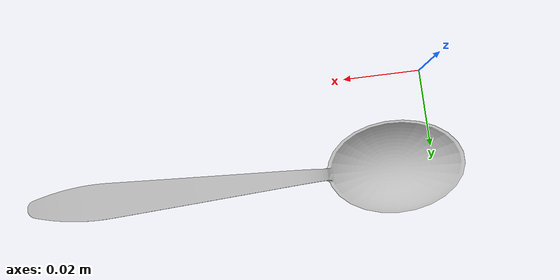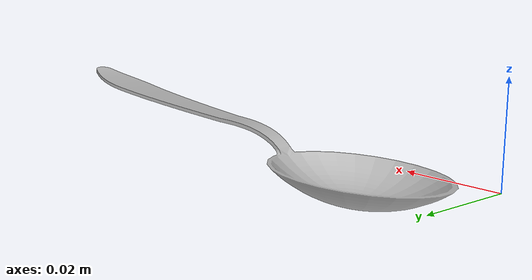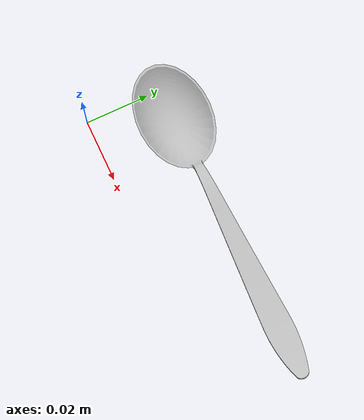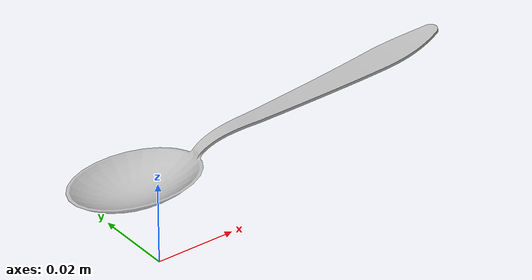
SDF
<?xml version="1.0" ?>

<sdf version="1.6">
  <model name="Knife">
    <link name="link_0">
      <inertial>
        <mass>0.1</mass>
        <inertia>
          <ixx>0.001</ixx>
          <ixy>0.000000</ixy>
          <ixz>0.000000</ixz>
          <iyy>0.001</iyy>
          <iyz>0.000000</iyz>
          <izz>0.001</izz>
        </inertia>
      </inertial>
      <visual name="visual">
        <geometry>
          <mesh>
            <uri>meshes/model.obj</uri>
	    <scale>0.02 0.02 0.02</scale>
          </mesh>
        </geometry>
      </visual>
      <collision name="collision_0">
        <geometry>
          <box>
            <size>0.05 0.1 0.055</size>
          </box>
        </geometry>
        <surface>
          <friction>
            <ode>
              <mu>10.0</mu>
              <mu2>10.0</mu2>
            </ode>
          </friction>
        </surface>
      </collision>
    </link>
  </model>
</sdf>
